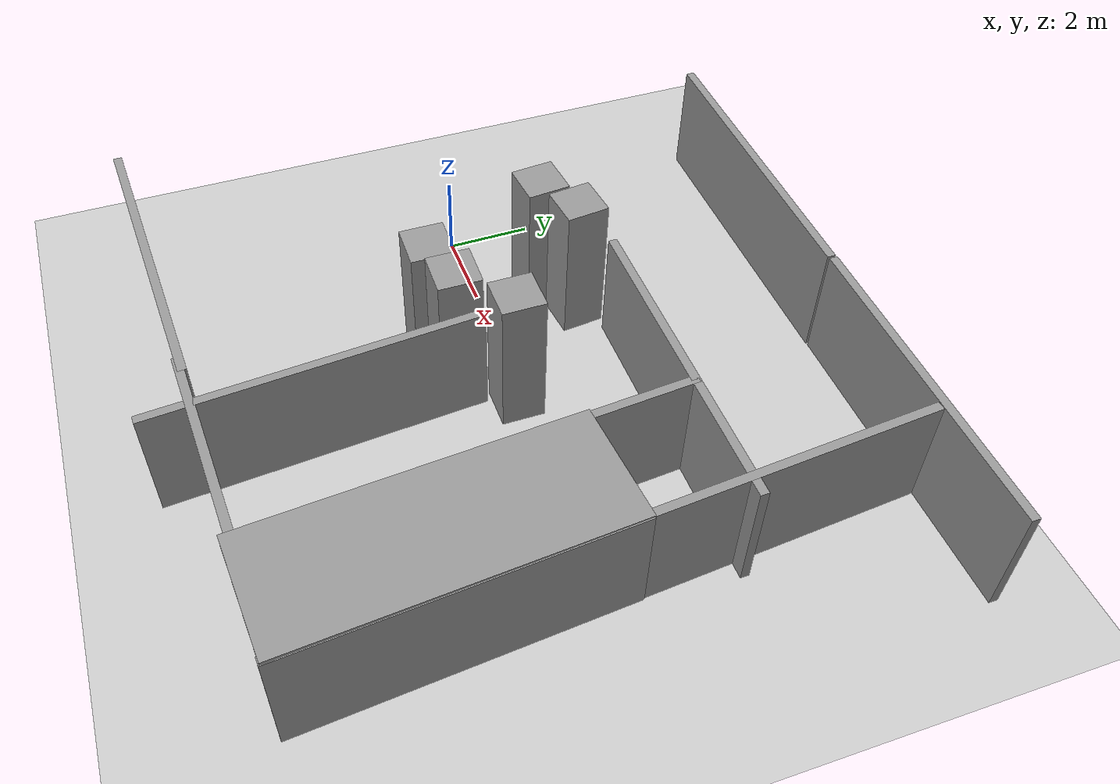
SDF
<sdf version="1.6">
 <world name="default">
  <light name="sun" type="directional">
   <pose>0 0 10 0 -0 0</pose>
   <diffuse>0.8 0.8 0.8 1</diffuse>
   <specular>0.2 0.2 0.2 1</specular>
   <attenuation>
    <range>1000</range>
    <constant>0.9</constant>
    <linear>0.01</linear>
    <quadratic>0.001</quadratic>
   </attenuation>
   <direction>-0.5 0.1 -0.9</direction>
  </light>
  <model name="ground_plane">
   <static>1</static>
   <link name="link">
    <collision name="collision">
     <geometry><plane><normal>0 0 1</normal><size>100 100</size></plane></geometry>
     <surface><friction><ode><mu>100</mu><mu2>50</mu2></ode></friction></surface>
    </collision>
    <visual name="visual">
     <cast_shadows>0</cast_shadows>
     <geometry><plane><normal>0 0 1</normal><size>100 100</size></plane></geometry>
     <material>
      <script><uri>file://media/materials/scripts/gazebo.material</uri><name>Gazebo/Grey</name></script>
     </material>
    </visual>
    <velocity_decay><linear>0</linear><angular>0</angular></velocity_decay>
   </link>
  </model>
  <physics name="default_physics" default="0" type="ode">
   <max_step_size>0.001</max_step_size>
   <real_time_factor>1</real_time_factor>
   <real_time_update_rate>1000</real_time_update_rate>
  </physics>
  <scene><ambient>0.4 0.4 0.4 1</ambient><background>0.7 0.7 0.7 1</background><shadows>1</shadows></scene>
  <model name="grey_wall">
   <static>1</static>
   <link name="link">
    <pose>0 0 1.4 0 -0 0</pose>
    <collision name="collision"><geometry><box><size>7.5 0.2 2.8</size></box></geometry></collision>
    <visual name="visual">
     <cast_shadows>0</cast_shadows>
     <geometry><box><size>7.5 0.2 2.8</size></box></geometry>
     <material>
      <script>
       <uri>model://grey_wall/materials/scripts</uri>
       <uri>model://grey_wall/materials/textures</uri>
       <name>vrc/grey_wall</name>
      </script>
     </material>
    </visual>
    <velocity_decay><linear>0</linear><angular>0</angular></velocity_decay>
   </link>
   <pose>9.9002 7.09699 0 0 -0 0</pose>
  </model>
  <gravity>0 0 -9.8</gravity>
  <magnetic_field>6e-06 2.3e-05 -4.2e-05</magnetic_field>
  <atmosphere type="adiabatic"/>
  <spherical_coordinates>
   <surface_model>EARTH_WGS84</surface_model>
   <latitude_deg>0</latitude_deg>
   <longitude_deg>0</longitude_deg>
   <elevation>0</elevation>
   <heading_deg>0</heading_deg>
  </spherical_coordinates>
  <model name="grey_wall_clone">
   <static>1</static>
   <link name="link">
    <pose>0 0 1.4 0 -0 0</pose>
    <collision name="collision"><geometry><box><size>7.5 0.2 2.8</size></box></geometry></collision>
    <visual name="visual">
     <cast_shadows>0</cast_shadows>
     <geometry><box><size>7.5 0.2 2.8</size></box></geometry>
     <material>
      <script>
       <uri>model://grey_wall/materials/scripts</uri>
       <uri>model://grey_wall/materials/textures</uri>
       <name>vrc/grey_wall</name>
      </script>
     </material>
    </visual>
    <velocity_decay><linear>0</linear><angular>0</angular></velocity_decay>
   </link>
   <pose>10.984 3.24141 0 0 -0 1.64938</pose>
  </model>
  <model name="grey_wall_clone_0">
   <static>1</static>
   <link name="link">
    <pose>0 0 1.4 0 -0 0</pose>
    <collision name="collision"><geometry><box><size>7.5 0.2 2.8</size></box></geometry></collision>
    <visual name="visual">
     <cast_shadows>0</cast_shadows>
     <geometry><box><size>7.5 0.2 2.8</size></box></geometry>
     <material>
      <script>
       <uri>model://grey_wall/materials/scripts</uri>
       <uri>model://grey_wall/materials/textures</uri>
       <name>vrc/grey_wall</name>
      </script>
     </material>
    </visual>
    <velocity_decay><linear>0</linear><angular>0</angular></velocity_decay>
   </link>
   <pose>2.34917 7.08187 0 0 -0 0</pose>
  </model>
  <model name="grey_wall_clone_1">
   <static>1</static>
   <link name="link">
    <pose>0 0 1.4 0 -0 0</pose>
    <collision name="collision"><geometry><box><size>7.5 0.2 2.8</size></box></geometry></collision>
    <visual name="visual">
     <cast_shadows>0</cast_shadows>
     <geometry><box><size>7.5 0.2 2.8</size></box></geometry>
     <material>
      <script>
       <uri>model://grey_wall/materials/scripts</uri>
       <uri>model://grey_wall/materials/textures</uri>
       <name>vrc/grey_wall</name>
      </script>
     </material>
    </visual>
    <velocity_decay><linear>0</linear><angular>0</angular></velocity_decay>
   </link>
   <pose>8.80618 -3.42241 2.74238 -1.56857 -0.004708 -1.49084</pose>
  </model>
  <model name="grey_wall_clone_clone">
   <static>1</static>
   <link name="link">
    <pose>0 0 1.4 0 -0 0</pose>
    <collision name="collision"><geometry><box><size>7.5 0.2 2.8</size></box></geometry></collision>
    <visual name="visual">
     <cast_shadows>0</cast_shadows>
     <geometry><box><size>7.5 0.2 2.8</size></box></geometry>
     <material>
      <script>
       <uri>model://grey_wall/materials/scripts</uri>
       <uri>model://grey_wall/materials/textures</uri>
       <name>vrc/grey_wall</name>
      </script>
     </material>
    </visual>
    <velocity_decay><linear>0</linear><angular>0</angular></velocity_decay>
   </link>
   <pose>8.73999 -1.01226 0 0 -0 1.64938</pose>
  </model>
  <model name="grey_wall_clone_2">
   <static>1</static>
   <link name="link">
    <pose>0 0 1.4 0 -0 0</pose>
    <collision name="collision"><geometry><box><size>7.5 0.2 2.8</size></box></geometry></collision>
    <visual name="visual">
     <cast_shadows>0</cast_shadows>
     <geometry><box><size>7.5 0.2 2.8</size></box></geometry>
     <material>
      <script>
       <uri>model://grey_wall/materials/scripts</uri>
       <uri>model://grey_wall/materials/textures</uri>
       <name>vrc/grey_wall</name>
      </script>
     </material>
    </visual>
    <velocity_decay><linear>0</linear><angular>0</angular></velocity_decay>
   </link>
   <pose>7.75239 2.66312 0 0 -0 0</pose>
  </model>
  <model name="grey_wall_clone_clone_0">
   <static>1</static>
   <link name="link">
    <pose>0 0 1.4 0 -0 0</pose>
    <collision name="collision"><geometry><box><size>7.5 0.2 2.8</size></box></geometry></collision>
    <visual name="visual">
     <cast_shadows>0</cast_shadows>
     <geometry><box><size>7.5 0.2 2.8</size></box></geometry>
     <material>
      <script>
       <uri>model://grey_wall/materials/scripts</uri>
       <uri>model://grey_wall/materials/textures</uri>
       <name>vrc/grey_wall</name>
      </script>
     </material>
    </visual>
    <velocity_decay><linear>0</linear><angular>0</angular></velocity_decay>
   </link>
   <pose>11.5239 -3.2263 0 0 -0 1.64938</pose>
  </model>
  <model name="grey_wall_clone_2_clone">
   <static>1</static>
   <link name="link">
    <pose>0 0 1.4 0 -0 0</pose>
    <collision name="collision"><geometry><box><size>7.5 0.2 2.8</size></box></geometry></collision>
    <visual name="visual">
     <cast_shadows>0</cast_shadows>
     <geometry><box><size>7.5 0.2 2.8</size></box></geometry>
     <material>
      <script>
       <uri>model://grey_wall/materials/scripts</uri>
       <uri>model://grey_wall/materials/textures</uri>
       <name>vrc/grey_wall</name>
      </script>
     </material>
    </visual>
    <velocity_decay><linear>0</linear><angular>0</angular></velocity_decay>
   </link>
   <pose>8.14959 -7.00704 0 0 -0 0.057579</pose>
  </model>
  <model name="grey_wall_clone_2_clone_clone">
   <static>1</static>
   <link name="link">
    <pose>0 0 1.4 0 -0 0</pose>
    <collision name="collision"><geometry><box><size>7.5 0.2 2.8</size></box></geometry></collision>
    <visual name="visual">
     <cast_shadows>0</cast_shadows>
     <geometry><box><size>7.5 0.2 2.8</size></box></geometry>
     <material>
      <script>
       <uri>model://grey_wall/materials/scripts</uri>
       <uri>model://grey_wall/materials/textures</uri>
       <name>vrc/grey_wall</name>
      </script>
     </material>
    </visual>
    <velocity_decay><linear>0</linear><angular>0</angular></velocity_decay>
   </link>
   <pose>1.06365 -7.3664 0 0 -0 0.057579</pose>
  </model>
  <model name="grey_wall_clone_clone_clone">
   <static>1</static>
   <link name="link">
    <pose>0 0 1.4 0 -0 0</pose>
    <collision name="collision"><geometry><box><size>7.5 0.2 2.8</size></box></geometry></collision>
    <visual name="visual">
     <cast_shadows>0</cast_shadows>
     <geometry><box><size>7.5 0.2 2.8</size></box></geometry>
     <material>
      <script>
       <uri>model://grey_wall/materials/scripts</uri>
       <uri>model://grey_wall/materials/textures</uri>
       <name>vrc/grey_wall</name>
      </script>
     </material>
    </visual>
    <velocity_decay><linear>0</linear><angular>0</angular></velocity_decay>
   </link>
   <pose>5.52528 -4.53646 0 0 -0 1.64938</pose>
  </model>
  <model name="unit_box_tall">
   <link name="link">
    <inertial>
     <mass>3.50829</mass>
     <inertia><ixx>3.89072</ixx><ixy>0</ixy><ixz>0</ixz><iyy>3.89072</iyy><iyz>0</iyz><izz>0.584715</izz></inertia>
    </inertial>
    <visual name="visual">
     <geometry><box><size>1 1 3.50829</size></box></geometry>
     <material>
      <script><name>Gazebo/Grey</name><uri>file://media/materials/scripts/gazebo.material</uri></script>
      <shader type="pixel"/>
      <ambient>0.3 0.3 0.3 1</ambient>
      <diffuse>0.7 0.7 0.7 1</diffuse>
      <specular>0.01 0.01 0.01 1</specular>
      <emissive>0 0 0 1</emissive>
     </material>
    </visual>
    <collision name="collision">
     <geometry><box><size>1 1 3.50829</size></box></geometry>
     <surface>
      <friction>
       <ode><mu>1</mu><mu2>1</mu2><fdir1>0 0 0</fdir1><slip1>0</slip1><slip2>0</slip2></ode>
       <torsional>
        <coefficient>1</coefficient>
        <patch_radius>0</patch_radius>
        <surface_radius>0</surface_radius>
        <use_patch_radius>1</use_patch_radius>
        <ode><slip>0</slip></ode>
       </torsional>
      </friction>
      <bounce><restitution_coefficient>0</restitution_coefficient><threshold>1e+06</threshold></bounce>
      <contact>
       <collide_without_contact>0</collide_without_contact>
       <collide_without_contact_bitmask>1</collide_without_contact_bitmask>
       <collide_bitmask>1</collide_bitmask>
       <ode>
        <soft_cfm>0</soft_cfm>
        <soft_erp>0.2</soft_erp>
        <kp>1e+13</kp>
        <kd>1</kd>
        <max_vel>0.01</max_vel>
        <min_depth>0</min_depth>
       </ode>
       <bullet>
        <split_impulse>1</split_impulse>
        <split_impulse_penetration_threshold>-0.01</split_impulse_penetration_threshold>
        <soft_cfm>0</soft_cfm>
        <soft_erp>0.2</soft_erp>
        <kp>1e+13</kp>
        <kd>1</kd>
       </bullet>
      </contact>
     </surface>
    </collision>
   </link>
   <static>0</static>
   <pose>5.60437 -0.18894 1.75415 -0 1e-06 -6.7e-05</pose>
  </model>
  <model name="unit_box_tall_clone">
   <link name="link">
    <inertial>
     <mass>3.50829</mass>
     <inertia><ixx>3.89072</ixx><ixy>0</ixy><ixz>0</ixz><iyy>3.89072</iyy><iyz>0</iyz><izz>0.584715</izz></inertia>
    </inertial>
    <visual name="visual">
     <geometry><box><size>1 1 3.50829</size></box></geometry>
     <material>
      <script><name>Gazebo/Grey</name><uri>file://media/materials/scripts/gazebo.material</uri></script>
      <shader type="pixel"/>
      <ambient>0.3 0.3 0.3 1</ambient>
      <diffuse>0.7 0.7 0.7 1</diffuse>
      <specular>0.01 0.01 0.01 1</specular>
      <emissive>0 0 0 1</emissive>
     </material>
    </visual>
    <collision name="collision">
     <geometry><box><size>1 1 3.50829</size></box></geometry>
     <surface>
      <friction>
       <ode><mu>1</mu><mu2>1</mu2><fdir1>0 0 0</fdir1><slip1>0</slip1><slip2>0</slip2></ode>
       <torsional>
        <coefficient>1</coefficient>
        <patch_radius>0</patch_radius>
        <surface_radius>0</surface_radius>
        <use_patch_radius>1</use_patch_radius>
        <ode><slip>0</slip></ode>
       </torsional>
      </friction>
      <bounce><restitution_coefficient>0</restitution_coefficient><threshold>1e+06</threshold></bounce>
      <contact>
       <collide_without_contact>0</collide_without_contact>
       <collide_without_contact_bitmask>1</collide_without_contact_bitmask>
       <collide_bitmask>1</collide_bitmask>
       <ode>
        <soft_cfm>0</soft_cfm>
        <soft_erp>0.2</soft_erp>
        <kp>1e+13</kp>
        <kd>1</kd>
        <max_vel>0.01</max_vel>
        <min_depth>0</min_depth>
       </ode>
       <bullet>
        <split_impulse>1</split_impulse>
        <split_impulse_penetration_threshold>-0.01</split_impulse_penetration_threshold>
        <soft_cfm>0</soft_cfm>
        <soft_erp>0.2</soft_erp>
        <kp>1e+13</kp>
        <kd>1</kd>
       </bullet>
      </contact>
     </surface>
    </collision>
   </link>
   <static>0</static>
   <pose>4.41714 -1.2245 1.77347 1e-06 0.041719 -0.00887</pose>
  </model>
  <model name="unit_box_tall_clone_clone">
   <link name="link">
    <inertial>
     <mass>3.50829</mass>
     <inertia><ixx>3.89072</ixx><ixy>0</ixy><ixz>0</ixz><iyy>3.89072</iyy><iyz>0</iyz><izz>0.584715</izz></inertia>
    </inertial>
    <visual name="visual">
     <geometry><box><size>1 1 3.50829</size></box></geometry>
     <material>
      <script><name>Gazebo/Grey</name><uri>file://media/materials/scripts/gazebo.material</uri></script>
      <shader type="pixel"/>
      <ambient>0.3 0.3 0.3 1</ambient>
      <diffuse>0.7 0.7 0.7 1</diffuse>
      <specular>0.01 0.01 0.01 1</specular>
      <emissive>0 0 0 1</emissive>
     </material>
    </visual>
    <collision name="collision">
     <geometry><box><size>1 1 3.50829</size></box></geometry>
     <surface>
      <friction>
       <ode><mu>1</mu><mu2>1</mu2><fdir1>0 0 0</fdir1><slip1>0</slip1><slip2>0</slip2></ode>
       <torsional>
        <coefficient>1</coefficient>
        <patch_radius>0</patch_radius>
        <surface_radius>0</surface_radius>
        <use_patch_radius>1</use_patch_radius>
        <ode><slip>0</slip></ode>
       </torsional>
      </friction>
      <bounce><restitution_coefficient>0</restitution_coefficient><threshold>1e+06</threshold></bounce>
      <contact>
       <collide_without_contact>0</collide_without_contact>
       <collide_without_contact_bitmask>1</collide_without_contact_bitmask>
       <collide_bitmask>1</collide_bitmask>
       <ode>
        <soft_cfm>0</soft_cfm>
        <soft_erp>0.2</soft_erp>
        <kp>1e+13</kp>
        <kd>1</kd>
        <max_vel>0.01</max_vel>
        <min_depth>0</min_depth>
       </ode>
       <bullet>
        <split_impulse>1</split_impulse>
        <split_impulse_penetration_threshold>-0.01</split_impulse_penetration_threshold>
        <soft_cfm>0</soft_cfm>
        <soft_erp>0.2</soft_erp>
        <kp>1e+13</kp>
        <kd>1</kd>
       </bullet>
      </contact>
     </surface>
    </collision>
   </link>
   <static>0</static>
   <pose>3.26228 2.10073 1.75415 0 -1e-06 0.10643</pose>
  </model>
  <model name="unit_box_tall_clone_clone_0">
   <link name="link">
    <inertial>
     <mass>3.50829</mass>
     <inertia><ixx>3.89072</ixx><ixy>0</ixy><ixz>0</ixz><iyy>3.89072</iyy><iyz>0</iyz><izz>0.584715</izz></inertia>
    </inertial>
    <visual name="visual">
     <geometry><box><size>1 1 3.50829</size></box></geometry>
     <material>
      <script><name>Gazebo/Grey</name><uri>file://media/materials/scripts/gazebo.material</uri></script>
      <shader type="pixel"/>
      <ambient>0.3 0.3 0.3 1</ambient>
      <diffuse>0.7 0.7 0.7 1</diffuse>
      <specular>0.01 0.01 0.01 1</specular>
      <emissive>0 0 0 1</emissive>
     </material>
    </visual>
    <collision name="collision">
     <geometry><box><size>1 1 3.50829</size></box></geometry>
     <surface>
      <friction>
       <ode><mu>1</mu><mu2>1</mu2><fdir1>0 0 0</fdir1><slip1>0</slip1><slip2>0</slip2></ode>
       <torsional>
        <coefficient>1</coefficient>
        <patch_radius>0</patch_radius>
        <surface_radius>0</surface_radius>
        <use_patch_radius>1</use_patch_radius>
        <ode><slip>0</slip></ode>
       </torsional>
      </friction>
      <bounce><restitution_coefficient>0</restitution_coefficient><threshold>1e+06</threshold></bounce>
      <contact>
       <collide_without_contact>0</collide_without_contact>
       <collide_without_contact_bitmask>1</collide_without_contact_bitmask>
       <collide_bitmask>1</collide_bitmask>
       <ode>
        <soft_cfm>0</soft_cfm>
        <soft_erp>0.2</soft_erp>
        <kp>1e+13</kp>
        <kd>1</kd>
        <max_vel>0.01</max_vel>
        <min_depth>0</min_depth>
       </ode>
       <bullet>
        <split_impulse>1</split_impulse>
        <split_impulse_penetration_threshold>-0.01</split_impulse_penetration_threshold>
        <soft_cfm>0</soft_cfm>
        <soft_erp>0.2</soft_erp>
        <kp>1e+13</kp>
        <kd>1</kd>
       </bullet>
      </contact>
     </surface>
    </collision>
   </link>
   <static>0</static>
   <pose>3.41359 -1.52161 1.77347 1e-06 0.041717 -0.008869</pose>
  </model>
  <model name="unit_box_tall_clone_clone_clone">
   <link name="link">
    <inertial>
     <mass>3.50829</mass>
     <inertia><ixx>3.89072</ixx><ixy>0</ixy><ixz>0</ixz><iyy>3.89072</iyy><iyz>0</iyz><izz>0.584715</izz></inertia>
    </inertial>
    <visual name="visual">
     <geometry><box><size>1 1 3.50829</size></box></geometry>
     <material>
      <script><name>Gazebo/Grey</name><uri>file://media/materials/scripts/gazebo.material</uri></script>
      <shader type="pixel"/>
      <ambient>0.3 0.3 0.3 1</ambient>
      <diffuse>0.7 0.7 0.7 1</diffuse>
      <specular>0.01 0.01 0.01 1</specular>
      <emissive>0 0 0 1</emissive>
     </material>
    </visual>
    <collision name="collision">
     <geometry><box><size>1 1 3.50829</size></box></geometry>
     <surface>
      <friction>
       <ode><mu>1</mu><mu2>1</mu2><fdir1>0 0 0</fdir1><slip1>0</slip1><slip2>0</slip2></ode>
       <torsional>
        <coefficient>1</coefficient>
        <patch_radius>0</patch_radius>
        <surface_radius>0</surface_radius>
        <use_patch_radius>1</use_patch_radius>
        <ode><slip>0</slip></ode>
       </torsional>
      </friction>
      <bounce><restitution_coefficient>0</restitution_coefficient><threshold>1e+06</threshold></bounce>
      <contact>
       <collide_without_contact>0</collide_without_contact>
       <collide_without_contact_bitmask>1</collide_without_contact_bitmask>
       <collide_bitmask>1</collide_bitmask>
       <ode>
        <soft_cfm>0</soft_cfm>
        <soft_erp>0.2</soft_erp>
        <kp>1e+13</kp>
        <kd>1</kd>
        <max_vel>0.01</max_vel>
        <min_depth>0</min_depth>
       </ode>
       <bullet>
        <split_impulse>1</split_impulse>
        <split_impulse_penetration_threshold>-0.01</split_impulse_penetration_threshold>
        <soft_cfm>0</soft_cfm>
        <soft_erp>0.2</soft_erp>
        <kp>1e+13</kp>
        <kd>1</kd>
       </bullet>
      </contact>
     </surface>
    </collision>
   </link>
   <static>0</static>
   <pose>2.25181 1.54839 1.75414 0 1e-06 0.08974</pose>
  </model>
 </world>
</sdf>
